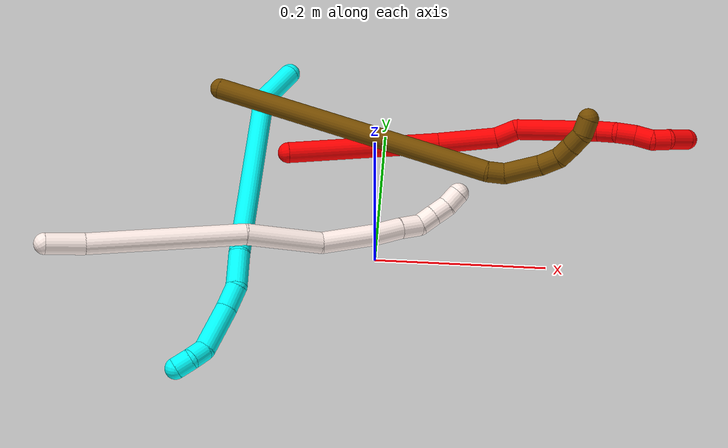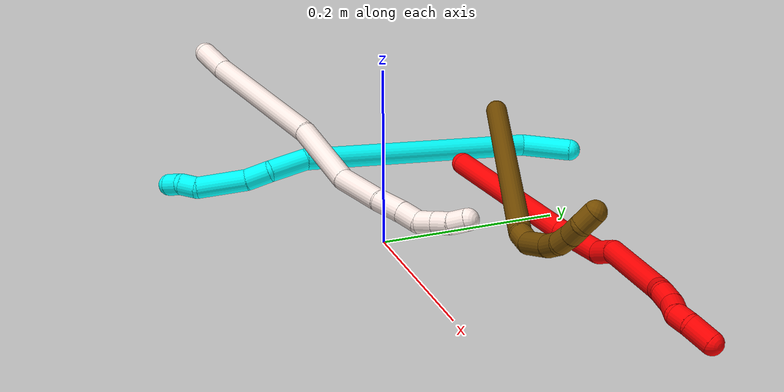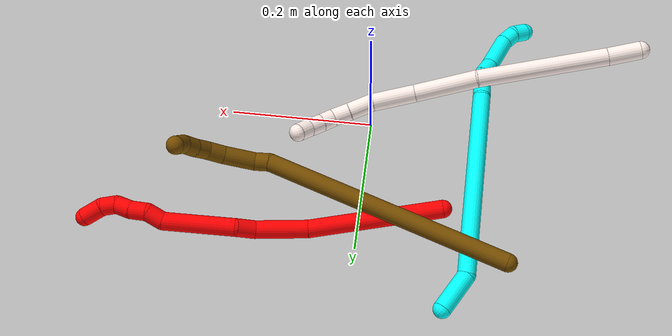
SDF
<sdf version="1.7">
 <world name="default">
  <model name="2">
   <static>0</static>
   <link name="2">
    <collision name="collision-cylinder-e_1_1_4">
     <pose>0.003264 0.012116 0.091276 -0.131971 0.035439 -0.002342</pose>
     <geometry><cylinder><radius>0.0125</radius><length>0.184268</length></cylinder></geometry>
     <surface>
      <friction><ode><mu>1.16</mu><mu2>1.16</mu2><slip1>0</slip1><slip2>0</slip2></ode></friction>
      <contact><ode><kp>1e+06</kp><kd>1</kd><max_vel>0</max_vel><min_depth>0.001</min_depth></ode></contact>
     </surface>
    </collision>
    <visual name="visual-cylinder-e_1_1_4">
     <pose>0.003264 0.012116 0.091276 -0.131971 0.035439 -0.002342</pose>
     <geometry><cylinder><radius>0.0125</radius><length>0.184268</length></cylinder></geometry>
     <material><ambient>1 0 0 1</ambient></material>
    </visual>
    <collision name="collision-cylinder-e_2_4_5">
     <pose>0.010001 0.02385 0.218422 0.010653 0.096491 0.000514</pose>
     <geometry><cylinder><radius>0.0125</radius><length>0.072081</length></cylinder></geometry>
     <surface>
      <friction><ode><mu>1.16</mu><mu2>1.16</mu2><slip1>0</slip1><slip2>0</slip2></ode></friction>
      <contact><ode><kp>1e+06</kp><kd>1</kd><max_vel>0</max_vel><min_depth>0.001</min_depth></ode></contact>
     </surface>
    </collision>
    <visual name="visual-cylinder-e_2_4_5">
     <pose>0.010001 0.02385 0.218422 0.010653 0.096491 0.000514</pose>
     <geometry><cylinder><radius>0.0125</radius><length>0.072081</length></cylinder></geometry>
     <material><ambient>1 0 0 1</ambient></material>
    </visual>
    <collision name="collision-cylinder-e_3_5_6">
     <pose>0.013192 0.01867 0.266925 0.36296 -0.020839 -0.003824</pose>
     <geometry><cylinder><radius>0.0125</radius><length>0.027033</length></cylinder></geometry>
     <surface>
      <friction><ode><mu>1.16</mu><mu2>1.16</mu2><slip1>0</slip1><slip2>0</slip2></ode></friction>
      <contact><ode><kp>1e+06</kp><kd>1</kd><max_vel>0</max_vel><min_depth>0.001</min_depth></ode></contact>
     </surface>
    </collision>
    <visual name="visual-cylinder-e_3_5_6">
     <pose>0.013192 0.01867 0.266925 0.36296 -0.020839 -0.003824</pose>
     <geometry><cylinder><radius>0.0125</radius><length>0.027033</length></cylinder></geometry>
     <material><ambient>1 0 0 1</ambient></material>
    </visual>
    <collision name="collision-cylinder-e_4_6_7">
     <pose>0.0241 0.01379 0.327628 0.001722 0.228706 0.000198</pose>
     <geometry><cylinder><radius>0.0125</radius><length>0.098709</length></cylinder></geometry>
     <surface>
      <friction><ode><mu>1.16</mu><mu2>1.16</mu2><slip1>0</slip1><slip2>0</slip2></ode></friction>
      <contact><ode><kp>1e+06</kp><kd>1</kd><max_vel>0</max_vel><min_depth>0.001</min_depth></ode></contact>
     </surface>
    </collision>
    <visual name="visual-cylinder-e_4_6_7">
     <pose>0.0241 0.01379 0.327628 0.001722 0.228706 0.000198</pose>
     <geometry><cylinder><radius>0.0125</radius><length>0.098709</length></cylinder></geometry>
     <material><ambient>1 0 0 1</ambient></material>
    </visual>
    <collision name="collision-cylinder-e_5_7_8">
     <pose>0.04103 0.009682 0.385343 0.395271 0.502269 0.102658</pose>
     <geometry><cylinder><radius>0.0125</radius><length>0.023849</length></cylinder></geometry>
     <surface>
      <friction><ode><mu>1.16</mu><mu2>1.16</mu2><slip1>0</slip1><slip2>0</slip2></ode></friction>
      <contact><ode><kp>1e+06</kp><kd>1</kd><max_vel>0</max_vel><min_depth>0.001</min_depth></ode></contact>
     </surface>
    </collision>
    <visual name="visual-cylinder-e_5_7_8">
     <pose>0.04103 0.009682 0.385343 0.395271 0.502269 0.102658</pose>
     <geometry><cylinder><radius>0.0125</radius><length>0.023849</length></cylinder></geometry>
     <material><ambient>1 0 0 1</ambient></material>
    </visual>
    <collision name="collision-cylinder-e_6_8_9">
     <pose>0.05057 0.00641 0.406074 -0.067798 0.3295 -0.011276</pose>
     <geometry><cylinder><radius>0.0125</radius><length>0.023485</length></cylinder></geometry>
     <surface>
      <friction><ode><mu>1.16</mu><mu2>1.16</mu2><slip1>0</slip1><slip2>0</slip2></ode></friction>
      <contact><ode><kp>1e+06</kp><kd>1</kd><max_vel>0</max_vel><min_depth>0.001</min_depth></ode></contact>
     </surface>
    </collision>
    <visual name="visual-cylinder-e_6_8_9">
     <pose>0.05057 0.00641 0.406074 -0.067798 0.3295 -0.011276</pose>
     <geometry><cylinder><radius>0.0125</radius><length>0.023485</length></cylinder></geometry>
     <material><ambient>1 0 0 1</ambient></material>
    </visual>
    <collision name="collision-cylinder-e_7_9_10">
     <pose>0.059979 0.006975 0.426398 0.020373 0.54558 0.0057</pose>
     <geometry><cylinder><radius>0.0125</radius><length>0.021622</length></cylinder></geometry>
     <surface>
      <friction><ode><mu>1.16</mu><mu2>1.16</mu2><slip1>0</slip1><slip2>0</slip2></ode></friction>
      <contact><ode><kp>1e+06</kp><kd>1</kd><max_vel>0</max_vel><min_depth>0.001</min_depth></ode></contact>
     </surface>
    </collision>
    <visual name="visual-cylinder-e_7_9_10">
     <pose>0.059979 0.006975 0.426398 0.020373 0.54558 0.0057</pose>
     <geometry><cylinder><radius>0.0125</radius><length>0.021622</length></cylinder></geometry>
     <material><ambient>1 0 0 1</ambient></material>
    </visual>
    <collision name="collision-cylinder-e_8_10_11">
     <pose>0.066096 0.008377 0.445689 -0.156956 0.049805 -0.003917</pose>
     <geometry><cylinder><radius>0.0125</radius><length>0.020378</length></cylinder></geometry>
     <surface>
      <friction><ode><mu>1.16</mu><mu2>1.16</mu2><slip1>0</slip1><slip2>0</slip2></ode></friction>
      <contact><ode><kp>1e+06</kp><kd>1</kd><max_vel>0</max_vel><min_depth>0.001</min_depth></ode></contact>
     </surface>
    </collision>
    <visual name="visual-cylinder-e_8_10_11">
     <pose>0.066096 0.008377 0.445689 -0.156956 0.049805 -0.003917</pose>
     <geometry><cylinder><radius>0.0125</radius><length>0.020378</length></cylinder></geometry>
     <material><ambient>1 0 0 1</ambient></material>
    </visual>
    <collision name="collision-cylinder-e_9_11_2">
     <pose>0.064581 0.016576 0.468246 -0.486149 -0.14205 0.035281</pose>
     <geometry><cylinder><radius>0.0125</radius><length>0.028576</length></cylinder></geometry>
     <surface>
      <friction><ode><mu>1.16</mu><mu2>1.16</mu2><slip1>0</slip1><slip2>0</slip2></ode></friction>
      <contact><ode><kp>1e+06</kp><kd>1</kd><max_vel>0</max_vel><min_depth>0.001</min_depth></ode></contact>
     </surface>
    </collision>
    <visual name="visual-cylinder-e_9_11_2">
     <pose>0.064581 0.016576 0.468246 -0.486149 -0.14205 0.035281</pose>
     <geometry><cylinder><radius>0.0125</radius><length>0.028576</length></cylinder></geometry>
     <material><ambient>1 0 0 1</ambient></material>
    </visual>
    <collision name="collision-sphere-2">
     <pose>0.062558 0.023185 0.480751 0 -0 0</pose>
     <geometry><sphere><radius>0.0125</radius></sphere></geometry>
     <surface>
      <friction><ode><mu>1.16</mu><mu2>1.16</mu2><slip1>0</slip1><slip2>0</slip2></ode></friction>
      <contact><ode><kp>1e+06</kp><kd>1</kd><max_vel>0</max_vel><min_depth>0.001</min_depth></ode></contact>
     </surface>
    </collision>
    <visual name="visual-sphere-2">
     <pose>0.062558 0.023185 0.480751 0 -0 0</pose>
     <geometry><sphere><radius>0.0125</radius></sphere></geometry>
     <material><ambient>1 0 0 1</ambient></material>
    </visual>
    <collision name="collision-sphere-11">
     <pose>0.066604 0.009968 0.455741 0 -0 0</pose>
     <geometry><sphere><radius>0.0125</radius></sphere></geometry>
     <surface>
      <friction><ode><mu>1.16</mu><mu2>1.16</mu2><slip1>0</slip1><slip2>0</slip2></ode></friction>
      <contact><ode><kp>1e+06</kp><kd>1</kd><max_vel>0</max_vel><min_depth>0.001</min_depth></ode></contact>
     </surface>
    </collision>
    <visual name="visual-sphere-11">
     <pose>0.066604 0.009968 0.455741 0 -0 0</pose>
     <geometry><sphere><radius>0.0125</radius></sphere></geometry>
     <material><ambient>1 0 0 1</ambient></material>
    </visual>
    <collision name="collision-sphere-10">
     <pose>0.065589 0.006786 0.435638 0 -0 0</pose>
     <geometry><sphere><radius>0.0125</radius></sphere></geometry>
     <surface>
      <friction><ode><mu>1.16</mu><mu2>1.16</mu2><slip1>0</slip1><slip2>0</slip2></ode></friction>
      <contact><ode><kp>1e+06</kp><kd>1</kd><max_vel>0</max_vel><min_depth>0.001</min_depth></ode></contact>
     </surface>
    </collision>
    <visual name="visual-sphere-10">
     <pose>0.065589 0.006786 0.435638 0 -0 0</pose>
     <geometry><sphere><radius>0.0125</radius></sphere></geometry>
     <material><ambient>1 0 0 1</ambient></material>
    </visual>
    <collision name="collision-sphere-9">
     <pose>0.054369 0.007163 0.417159 0 -0 0</pose>
     <geometry><sphere><radius>0.0125</radius></sphere></geometry>
     <surface>
      <friction><ode><mu>1.16</mu><mu2>1.16</mu2><slip1>0</slip1><slip2>0</slip2></ode></friction>
      <contact><ode><kp>1e+06</kp><kd>1</kd><max_vel>0</max_vel><min_depth>0.001</min_depth></ode></contact>
     </surface>
    </collision>
    <visual name="visual-sphere-9">
     <pose>0.054369 0.007163 0.417159 0 -0 0</pose>
     <geometry><sphere><radius>0.0125</radius></sphere></geometry>
     <material><ambient>1 0 0 1</ambient></material>
    </visual>
    <collision name="collision-sphere-4">
     <pose>0.006529 0.024232 0.182551 0 -0 0</pose>
     <geometry><sphere><radius>0.0125</radius></sphere></geometry>
     <surface>
      <friction><ode><mu>1.16</mu><mu2>1.16</mu2><slip1>0</slip1><slip2>0</slip2></ode></friction>
      <contact><ode><kp>1e+06</kp><kd>1</kd><max_vel>0</max_vel><min_depth>0.001</min_depth></ode></contact>
     </surface>
    </collision>
    <visual name="visual-sphere-4">
     <pose>0.006529 0.024232 0.182551 0 -0 0</pose>
     <geometry><sphere><radius>0.0125</radius></sphere></geometry>
     <material><ambient>1 0 0 1</ambient></material>
    </visual>
    <collision name="collision-sphere-1">
     <geometry><sphere><radius>0.0125</radius></sphere></geometry>
     <surface>
      <friction><ode><mu>1.16</mu><mu2>1.16</mu2><slip1>0</slip1><slip2>0</slip2></ode></friction>
      <contact><ode><kp>1e+06</kp><kd>1</kd><max_vel>0</max_vel><min_depth>0.001</min_depth></ode></contact>
     </surface>
    </collision>
    <visual name="visual-sphere-1">
     <geometry><sphere><radius>0.0125</radius></sphere></geometry>
     <material><ambient>1 0 0 1</ambient></material>
    </visual>
    <collision name="collision-sphere-8">
     <pose>0.04677 0.005658 0.394989 0 -0 0</pose>
     <geometry><sphere><radius>0.0125</radius></sphere></geometry>
     <surface>
      <friction><ode><mu>1.16</mu><mu2>1.16</mu2><slip1>0</slip1><slip2>0</slip2></ode></friction>
      <contact><ode><kp>1e+06</kp><kd>1</kd><max_vel>0</max_vel><min_depth>0.001</min_depth></ode></contact>
     </surface>
    </collision>
    <visual name="visual-sphere-8">
     <pose>0.04677 0.005658 0.394989 0 -0 0</pose>
     <geometry><sphere><radius>0.0125</radius></sphere></geometry>
     <material><ambient>1 0 0 1</ambient></material>
    </visual>
    <collision name="collision-sphere-5">
     <pose>0.013473 0.023468 0.254292 0 -0 0</pose>
     <geometry><sphere><radius>0.0125</radius></sphere></geometry>
     <surface>
      <friction><ode><mu>1.16</mu><mu2>1.16</mu2><slip1>0</slip1><slip2>0</slip2></ode></friction>
      <contact><ode><kp>1e+06</kp><kd>1</kd><max_vel>0</max_vel><min_depth>0.001</min_depth></ode></contact>
     </surface>
    </collision>
    <visual name="visual-sphere-5">
     <pose>0.013473 0.023468 0.254292 0 -0 0</pose>
     <geometry><sphere><radius>0.0125</radius></sphere></geometry>
     <material><ambient>1 0 0 1</ambient></material>
    </visual>
    <collision name="collision-sphere-6">
     <pose>0.01291 0.013872 0.279558 0 -0 0</pose>
     <geometry><sphere><radius>0.0125</radius></sphere></geometry>
     <surface>
      <friction><ode><mu>1.16</mu><mu2>1.16</mu2><slip1>0</slip1><slip2>0</slip2></ode></friction>
      <contact><ode><kp>1e+06</kp><kd>1</kd><max_vel>0</max_vel><min_depth>0.001</min_depth></ode></contact>
     </surface>
    </collision>
    <visual name="visual-sphere-6">
     <pose>0.01291 0.013872 0.279558 0 -0 0</pose>
     <geometry><sphere><radius>0.0125</radius></sphere></geometry>
     <material><ambient>1 0 0 1</ambient></material>
    </visual>
    <collision name="collision-sphere-7">
     <pose>0.035289 0.013707 0.375697 0 -0 0</pose>
     <geometry><sphere><radius>0.0125</radius></sphere></geometry>
     <surface>
      <friction><ode><mu>1.16</mu><mu2>1.16</mu2><slip1>0</slip1><slip2>0</slip2></ode></friction>
      <contact><ode><kp>1e+06</kp><kd>1</kd><max_vel>0</max_vel><min_depth>0.001</min_depth></ode></contact>
     </surface>
    </collision>
    <visual name="visual-sphere-7">
     <pose>0.035289 0.013707 0.375697 0 -0 0</pose>
     <geometry><sphere><radius>0.0125</radius></sphere></geometry>
     <material><ambient>1 0 0 1</ambient></material>
    </visual>
    <inertial>
     <pose>0.021426 0.013988 0.245055 0 -0 0</pose>
     <mass>0.5</mass>
     <inertia>
      <ixx>0.00066</ixx>
      <ixy>0</ixy>
      <ixz>0</ixz>
      <iyy>0.000655</iyy>
      <iyz>0</iyz>
      <izz>-7.5e-05</izz>
     </inertia>
    </inertial>
   </link>
   <pose>-0.113829 0.140556 0.02774 -1.52259 0.159757 -1.31581</pose>
  </model>
  <model name="3">
   <static>0</static>
   <link name="3">
    <collision name="collision-cylinder-e_1_1_4">
     <pose>-0.00414 -0.028111 0.002272 1.49016 -0.145767 -0.134498</pose>
     <geometry><cylinder><radius>0.0125</radius><length>0.05701</length></cylinder></geometry>
     <surface>
      <friction><ode><mu>1.16</mu><mu2>1.16</mu2><slip1>0</slip1><slip2>0</slip2></ode></friction>
      <contact><ode><kp>1e+06</kp><kd>1</kd><max_vel>0</max_vel><min_depth>0.001</min_depth></ode></contact>
     </surface>
    </collision>
    <visual name="visual-cylinder-e_1_1_4">
     <pose>-0.00414 -0.028111 0.002272 1.49016 -0.145767 -0.134498</pose>
     <geometry><cylinder><radius>0.0125</radius><length>0.05701</length></cylinder></geometry>
     <material><ambient>0.003922 1 0.996078 1</ambient></material>
    </visual>
    <collision name="collision-cylinder-e_2_4_5">
     <pose>-0.009062 -0.171086 0.077737 1.00345 -0.005733 -0.003145</pose>
     <geometry><cylinder><radius>0.0125</radius><length>0.272408</length></cylinder></geometry>
     <surface>
      <friction><ode><mu>1.16</mu><mu2>1.16</mu2><slip1>0</slip1><slip2>0</slip2></ode></friction>
      <contact><ode><kp>1e+06</kp><kd>1</kd><max_vel>0</max_vel><min_depth>0.001</min_depth></ode></contact>
     </surface>
    </collision>
    <visual name="visual-cylinder-e_2_4_5">
     <pose>-0.009062 -0.171086 0.077737 1.00345 -0.005733 -0.003145</pose>
     <geometry><cylinder><radius>0.0125</radius><length>0.272408</length></cylinder></geometry>
     <material><ambient>0.003922 1 0.996078 1</ambient></material>
    </visual>
    <collision name="collision-cylinder-e_3_5_6">
     <pose>-0.004405 -0.304496 0.161168 1.06647 0.251274 0.14883</pose>
     <geometry><cylinder><radius>0.0125</radius><length>0.043743</length></cylinder></geometry>
     <surface>
      <friction><ode><mu>1.16</mu><mu2>1.16</mu2><slip1>0</slip1><slip2>0</slip2></ode></friction>
      <contact><ode><kp>1e+06</kp><kd>1</kd><max_vel>0</max_vel><min_depth>0.001</min_depth></ode></contact>
     </surface>
    </collision>
    <visual name="visual-cylinder-e_3_5_6">
     <pose>-0.004405 -0.304496 0.161168 1.06647 0.251274 0.14883</pose>
     <geometry><cylinder><radius>0.0125</radius><length>0.043743</length></cylinder></geometry>
     <material><ambient>0.003922 1 0.996078 1</ambient></material>
    </visual>
    <collision name="collision-cylinder-e_4_6_7">
     <pose>0.005454 -0.336722 0.172442 1.49511 0.311737 0.289322</pose>
     <geometry><cylinder><radius>0.0125</radius><length>0.028825</length></cylinder></geometry>
     <surface>
      <friction><ode><mu>1.16</mu><mu2>1.16</mu2><slip1>0</slip1><slip2>0</slip2></ode></friction>
      <contact><ode><kp>1e+06</kp><kd>1</kd><max_vel>0</max_vel><min_depth>0.001</min_depth></ode></contact>
     </surface>
    </collision>
    <visual name="visual-cylinder-e_4_6_7">
     <pose>0.005454 -0.336722 0.172442 1.49511 0.311737 0.289322</pose>
     <geometry><cylinder><radius>0.0125</radius><length>0.028825</length></cylinder></geometry>
     <material><ambient>0.003922 1 0.996078 1</ambient></material>
    </visual>
    <collision name="collision-cylinder-e_5_7_8">
     <pose>0.013121 -0.378674 0.178064 1.41004 0.112875 0.096074</pose>
     <geometry><cylinder><radius>0.0125</radius><length>0.057653</length></cylinder></geometry>
     <surface>
      <friction><ode><mu>1.16</mu><mu2>1.16</mu2><slip1>0</slip1><slip2>0</slip2></ode></friction>
      <contact><ode><kp>1e+06</kp><kd>1</kd><max_vel>0</max_vel><min_depth>0.001</min_depth></ode></contact>
     </surface>
    </collision>
    <visual name="visual-cylinder-e_5_7_8">
     <pose>0.013121 -0.378674 0.178064 1.41004 0.112875 0.096074</pose>
     <geometry><cylinder><radius>0.0125</radius><length>0.057653</length></cylinder></geometry>
     <material><ambient>0.003922 1 0.996078 1</ambient></material>
    </visual>
    <collision name="collision-cylinder-e_6_8_9">
     <pose>0.014119 -0.416733 0.181472 1.69042 -0.224376 -0.252675</pose>
     <geometry><cylinder><radius>0.0125</radius><length>0.020219</length></cylinder></geometry>
     <surface>
      <friction><ode><mu>1.16</mu><mu2>1.16</mu2><slip1>0</slip1><slip2>0</slip2></ode></friction>
      <contact><ode><kp>1e+06</kp><kd>1</kd><max_vel>0</max_vel><min_depth>0.001</min_depth></ode></contact>
     </surface>
    </collision>
    <visual name="visual-cylinder-e_6_8_9">
     <pose>0.014119 -0.416733 0.181472 1.69042 -0.224376 -0.252675</pose>
     <geometry><cylinder><radius>0.0125</radius><length>0.020219</length></cylinder></geometry>
     <material><ambient>0.003922 1 0.996078 1</ambient></material>
    </visual>
    <collision name="collision-cylinder-e_7_9_2">
     <pose>0.012321 -0.435373 0.175519 2.06563 0.044891 0.075211</pose>
     <geometry><cylinder><radius>0.0125</radius><length>0.020142</length></cylinder></geometry>
     <surface>
      <friction><ode><mu>1.16</mu><mu2>1.16</mu2><slip1>0</slip1><slip2>0</slip2></ode></friction>
      <contact><ode><kp>1e+06</kp><kd>1</kd><max_vel>0</max_vel><min_depth>0.001</min_depth></ode></contact>
     </surface>
    </collision>
    <visual name="visual-cylinder-e_7_9_2">
     <pose>0.012321 -0.435373 0.175519 2.06563 0.044891 0.075211</pose>
     <geometry><cylinder><radius>0.0125</radius><length>0.020142</length></cylinder></geometry>
     <material><ambient>0.003922 1 0.996078 1</ambient></material>
    </visual>
    <collision name="collision-sphere-2">
     <pose>0.012773 -0.444227 0.170741 0 -0 0</pose>
     <geometry><sphere><radius>0.0125</radius></sphere></geometry>
     <surface>
      <friction><ode><mu>1.16</mu><mu2>1.16</mu2><slip1>0</slip1><slip2>0</slip2></ode></friction>
      <contact><ode><kp>1e+06</kp><kd>1</kd><max_vel>0</max_vel><min_depth>0.001</min_depth></ode></contact>
     </surface>
    </collision>
    <visual name="visual-sphere-2">
     <pose>0.012773 -0.444227 0.170741 0 -0 0</pose>
     <geometry><sphere><radius>0.0125</radius></sphere></geometry>
     <material><ambient>0.003922 1 0.996078 1</ambient></material>
    </visual>
    <collision name="collision-sphere-9">
     <pose>0.011869 -0.426519 0.180296 0 -0 0</pose>
     <geometry><sphere><radius>0.0125</radius></sphere></geometry>
     <surface>
      <friction><ode><mu>1.16</mu><mu2>1.16</mu2><slip1>0</slip1><slip2>0</slip2></ode></friction>
      <contact><ode><kp>1e+06</kp><kd>1</kd><max_vel>0</max_vel><min_depth>0.001</min_depth></ode></contact>
     </surface>
    </collision>
    <visual name="visual-sphere-9">
     <pose>0.011869 -0.426519 0.180296 0 -0 0</pose>
     <geometry><sphere><radius>0.0125</radius></sphere></geometry>
     <material><ambient>0.003922 1 0.996078 1</ambient></material>
    </visual>
    <collision name="collision-sphere-4">
     <pose>-0.008281 -0.056223 0.004543 0 -0 0</pose>
     <geometry><sphere><radius>0.0125</radius></sphere></geometry>
     <surface>
      <friction><ode><mu>1.16</mu><mu2>1.16</mu2><slip1>0</slip1><slip2>0</slip2></ode></friction>
      <contact><ode><kp>1e+06</kp><kd>1</kd><max_vel>0</max_vel><min_depth>0.001</min_depth></ode></contact>
     </surface>
    </collision>
    <visual name="visual-sphere-4">
     <pose>-0.008281 -0.056223 0.004543 0 -0 0</pose>
     <geometry><sphere><radius>0.0125</radius></sphere></geometry>
     <material><ambient>0.003922 1 0.996078 1</ambient></material>
    </visual>
    <collision name="collision-sphere-1">
     <geometry><sphere><radius>0.0125</radius></sphere></geometry>
     <surface>
      <friction><ode><mu>1.16</mu><mu2>1.16</mu2><slip1>0</slip1><slip2>0</slip2></ode></friction>
      <contact><ode><kp>1e+06</kp><kd>1</kd><max_vel>0</max_vel><min_depth>0.001</min_depth></ode></contact>
     </surface>
    </collision>
    <visual name="visual-sphere-1">
     <geometry><sphere><radius>0.0125</radius></sphere></geometry>
     <material><ambient>0.003922 1 0.996078 1</ambient></material>
    </visual>
    <collision name="collision-sphere-8">
     <pose>0.016368 -0.406948 0.182649 0 -0 0</pose>
     <geometry><sphere><radius>0.0125</radius></sphere></geometry>
     <surface>
      <friction><ode><mu>1.16</mu><mu2>1.16</mu2><slip1>0</slip1><slip2>0</slip2></ode></friction>
      <contact><ode><kp>1e+06</kp><kd>1</kd><max_vel>0</max_vel><min_depth>0.001</min_depth></ode></contact>
     </surface>
    </collision>
    <visual name="visual-sphere-8">
     <pose>0.016368 -0.406948 0.182649 0 -0 0</pose>
     <geometry><sphere><radius>0.0125</radius></sphere></geometry>
     <material><ambient>0.003922 1 0.996078 1</ambient></material>
    </visual>
    <collision name="collision-sphere-5">
     <pose>-0.009843 -0.285949 0.150931 0 -0 0</pose>
     <geometry><sphere><radius>0.0125</radius></sphere></geometry>
     <surface>
      <friction><ode><mu>1.16</mu><mu2>1.16</mu2><slip1>0</slip1><slip2>0</slip2></ode></friction>
      <contact><ode><kp>1e+06</kp><kd>1</kd><max_vel>0</max_vel><min_depth>0.001</min_depth></ode></contact>
     </surface>
    </collision>
    <visual name="visual-sphere-5">
     <pose>-0.009843 -0.285949 0.150931 0 -0 0</pose>
     <geometry><sphere><radius>0.0125</radius></sphere></geometry>
     <material><ambient>0.003922 1 0.996078 1</ambient></material>
    </visual>
    <collision name="collision-sphere-6">
     <pose>0.001034 -0.323043 0.171405 0 -0 0</pose>
     <geometry><sphere><radius>0.0125</radius></sphere></geometry>
     <surface>
      <friction><ode><mu>1.16</mu><mu2>1.16</mu2><slip1>0</slip1><slip2>0</slip2></ode></friction>
      <contact><ode><kp>1e+06</kp><kd>1</kd><max_vel>0</max_vel><min_depth>0.001</min_depth></ode></contact>
     </surface>
    </collision>
    <visual name="visual-sphere-6">
     <pose>0.001034 -0.323043 0.171405 0 -0 0</pose>
     <geometry><sphere><radius>0.0125</radius></sphere></geometry>
     <material><ambient>0.003922 1 0.996078 1</ambient></material>
    </visual>
    <collision name="collision-sphere-7">
     <pose>0.009874 -0.3504 0.173479 0 -0 0</pose>
     <geometry><sphere><radius>0.0125</radius></sphere></geometry>
     <surface>
      <friction><ode><mu>1.16</mu><mu2>1.16</mu2><slip1>0</slip1><slip2>0</slip2></ode></friction>
      <contact><ode><kp>1e+06</kp><kd>1</kd><max_vel>0</max_vel><min_depth>0.001</min_depth></ode></contact>
     </surface>
    </collision>
    <visual name="visual-sphere-7">
     <pose>0.009874 -0.3504 0.173479 0 -0 0</pose>
     <geometry><sphere><radius>0.0125</radius></sphere></geometry>
     <material><ambient>0.003922 1 0.996078 1</ambient></material>
    </visual>
    <inertial>
     <pose>-0.0029 -0.22052 0.101593 0 -0 0</pose>
     <mass>0.5</mass>
     <inertia>
      <ixx>0.001741</ixx>
      <ixy>0</ixy>
      <ixz>0</ixz>
      <iyy>0.000881</iyy>
      <iyz>0</iyz>
      <izz>0.001499</izz>
     </inertia>
    </inertial>
   </link>
   <pose>-0.124534 0.28303 0.019312 0.333103 1.23944 -0.226459</pose>
  </model>
  <model name="11">
   <static>0</static>
   <link name="11">
    <collision name="collision-cylinder-e_1_1_4">
     <pose>-0.003858 0.011179 -0.019559 -2.62235 -0.169609 0.619486</pose>
     <geometry><cylinder><radius>0.0125</radius><length>0.045713</length></cylinder></geometry>
     <surface>
      <friction><ode><mu>1.16</mu><mu2>1.16</mu2><slip1>0</slip1><slip2>0</slip2></ode></friction>
      <contact><ode><kp>1e+06</kp><kd>1</kd><max_vel>0</max_vel><min_depth>0.001</min_depth></ode></contact>
     </surface>
    </collision>
    <visual name="visual-cylinder-e_1_1_4">
     <pose>-0.003858 0.011179 -0.019559 -2.62235 -0.169609 0.619486</pose>
     <geometry><cylinder><radius>0.0125</radius><length>0.045713</length></cylinder></geometry>
     <material><ambient>1 0.933333 0.909804 1</ambient></material>
    </visual>
    <collision name="collision-cylinder-e_2_4_5">
     <pose>-0.024615 0.060723 -0.12032 -2.70022 -0.185986 0.787957</pose>
     <geometry><cylinder><radius>0.0125</radius><length>0.182769</length></cylinder></geometry>
     <surface>
      <friction><ode><mu>1.16</mu><mu2>1.16</mu2><slip1>0</slip1><slip2>0</slip2></ode></friction>
      <contact><ode><kp>1e+06</kp><kd>1</kd><max_vel>0</max_vel><min_depth>0.001</min_depth></ode></contact>
     </surface>
    </collision>
    <visual name="visual-cylinder-e_2_4_5">
     <pose>-0.024615 0.060723 -0.12032 -2.70022 -0.185986 0.787957</pose>
     <geometry><cylinder><radius>0.0125</radius><length>0.182769</length></cylinder></geometry>
     <material><ambient>1 0.933333 0.909804 1</ambient></material>
    </visual>
    <collision name="collision-cylinder-e_3_5_6">
     <pose>-0.048291 0.125693 -0.237267 -2.50175 -0.150952 0.448811</pose>
     <geometry><cylinder><radius>0.0125</radius><length>0.090144</length></cylinder></geometry>
     <surface>
      <friction><ode><mu>1.16</mu><mu2>1.16</mu2><slip1>0</slip1><slip2>0</slip2></ode></friction>
      <contact><ode><kp>1e+06</kp><kd>1</kd><max_vel>0</max_vel><min_depth>0.001</min_depth></ode></contact>
     </surface>
    </collision>
    <visual name="visual-cylinder-e_3_5_6">
     <pose>-0.048291 0.125693 -0.237267 -2.50175 -0.150952 0.448811</pose>
     <geometry><cylinder><radius>0.0125</radius><length>0.090144</length></cylinder></geometry>
     <material><ambient>1 0.933333 0.909804 1</ambient></material>
    </visual>
    <collision name="collision-cylinder-e_4_6_7">
     <pose>-0.059091 0.163457 -0.30188 -2.77272 -0.129243 0.667781</pose>
     <geometry><cylinder><radius>0.0125</radius><length>0.062419</length></cylinder></geometry>
     <surface>
      <friction><ode><mu>1.16</mu><mu2>1.16</mu2><slip1>0</slip1><slip2>0</slip2></ode></friction>
      <contact><ode><kp>1e+06</kp><kd>1</kd><max_vel>0</max_vel><min_depth>0.001</min_depth></ode></contact>
     </surface>
    </collision>
    <visual name="visual-cylinder-e_4_6_7">
     <pose>-0.059091 0.163457 -0.30188 -2.77272 -0.129243 0.667781</pose>
     <geometry><cylinder><radius>0.0125</radius><length>0.062419</length></cylinder></geometry>
     <material><ambient>1 0.933333 0.909804 1</ambient></material>
    </visual>
    <collision name="collision-cylinder-e_5_7_8">
     <pose>-0.062306 0.180466 -0.346674 -2.78959 0.047542 -0.265804</pose>
     <geometry><cylinder><radius>0.0125</radius><length>0.033972</length></cylinder></geometry>
     <surface>
      <friction><ode><mu>1.16</mu><mu2>1.16</mu2><slip1>0</slip1><slip2>0</slip2></ode></friction>
      <contact><ode><kp>1e+06</kp><kd>1</kd><max_vel>0</max_vel><min_depth>0.001</min_depth></ode></contact>
     </surface>
    </collision>
    <visual name="visual-cylinder-e_5_7_8">
     <pose>-0.062306 0.180466 -0.346674 -2.78959 0.047542 -0.265804</pose>
     <geometry><cylinder><radius>0.0125</radius><length>0.033972</length></cylinder></geometry>
     <material><ambient>1 0.933333 0.909804 1</ambient></material>
    </visual>
    <collision name="collision-cylinder-e_6_8_9">
     <pose>-0.061398 0.191329 -0.373893 -2.72383 0.008214 -0.038746</pose>
     <geometry><cylinder><radius>0.0125</radius><length>0.024711</length></cylinder></geometry>
     <surface>
      <friction><ode><mu>1.16</mu><mu2>1.16</mu2><slip1>0</slip1><slip2>0</slip2></ode></friction>
      <contact><ode><kp>1e+06</kp><kd>1</kd><max_vel>0</max_vel><min_depth>0.001</min_depth></ode></contact>
     </surface>
    </collision>
    <visual name="visual-cylinder-e_6_8_9">
     <pose>-0.061398 0.191329 -0.373893 -2.72383 0.008214 -0.038746</pose>
     <geometry><cylinder><radius>0.0125</radius><length>0.024711</length></cylinder></geometry>
     <material><ambient>1 0.933333 0.909804 1</ambient></material>
    </visual>
    <collision name="collision-cylinder-e_7_9_10">
     <pose>-0.060009 0.19624 -0.395185 3.13149 0.128021 2.98429</pose>
     <geometry><cylinder><radius>0.0125</radius><length>0.020165</length></cylinder></geometry>
     <surface>
      <friction><ode><mu>1.16</mu><mu2>1.16</mu2><slip1>0</slip1><slip2>0</slip2></ode></friction>
      <contact><ode><kp>1e+06</kp><kd>1</kd><max_vel>0</max_vel><min_depth>0.001</min_depth></ode></contact>
     </surface>
    </collision>
    <visual name="visual-cylinder-e_7_9_10">
     <pose>-0.060009 0.19624 -0.395185 3.13149 0.128021 2.98429</pose>
     <geometry><cylinder><radius>0.0125</radius><length>0.020165</length></cylinder></geometry>
     <material><ambient>1 0.933333 0.909804 1</ambient></material>
    </visual>
    <collision name="collision-cylinder-e_8_10_11">
     <pose>-0.057932 0.195983 -0.415169 3.12598 0.078928 2.75122</pose>
     <geometry><cylinder><radius>0.0125</radius><length>0.020033</length></cylinder></geometry>
     <surface>
      <friction><ode><mu>1.16</mu><mu2>1.16</mu2><slip1>0</slip1><slip2>0</slip2></ode></friction>
      <contact><ode><kp>1e+06</kp><kd>1</kd><max_vel>0</max_vel><min_depth>0.001</min_depth></ode></contact>
     </surface>
    </collision>
    <visual name="visual-cylinder-e_8_10_11">
     <pose>-0.057932 0.195983 -0.415169 3.12598 0.078928 2.75122</pose>
     <geometry><cylinder><radius>0.0125</radius><length>0.020033</length></cylinder></geometry>
     <material><ambient>1 0.933333 0.909804 1</ambient></material>
    </visual>
    <collision name="collision-cylinder-e_9_11_2">
     <pose>-0.055729 0.193395 -0.434787 2.89433 0.141295 1.03534</pose>
     <geometry><cylinder><radius>0.0125</radius><length>0.020073</length></cylinder></geometry>
     <surface>
      <friction><ode><mu>1.16</mu><mu2>1.16</mu2><slip1>0</slip1><slip2>0</slip2></ode></friction>
      <contact><ode><kp>1e+06</kp><kd>1</kd><max_vel>0</max_vel><min_depth>0.001</min_depth></ode></contact>
     </surface>
    </collision>
    <visual name="visual-cylinder-e_9_11_2">
     <pose>-0.055729 0.193395 -0.434787 2.89433 0.141295 1.03534</pose>
     <geometry><cylinder><radius>0.0125</radius><length>0.020073</length></cylinder></geometry>
     <material><ambient>1 0.933333 0.909804 1</ambient></material>
    </visual>
    <collision name="collision-sphere-2">
     <pose>-0.054315 0.190963 -0.444422 0 -0 0</pose>
     <geometry><sphere><radius>0.0125</radius></sphere></geometry>
     <surface>
      <friction><ode><mu>1.16</mu><mu2>1.16</mu2><slip1>0</slip1><slip2>0</slip2></ode></friction>
      <contact><ode><kp>1e+06</kp><kd>1</kd><max_vel>0</max_vel><min_depth>0.001</min_depth></ode></contact>
     </surface>
    </collision>
    <visual name="visual-sphere-2">
     <pose>-0.054315 0.190963 -0.444422 0 -0 0</pose>
     <geometry><sphere><radius>0.0125</radius></sphere></geometry>
     <material><ambient>1 0.933333 0.909804 1</ambient></material>
    </visual>
    <collision name="collision-sphere-11">
     <pose>-0.057142 0.195827 -0.425153 0 -0 0</pose>
     <geometry><sphere><radius>0.0125</radius></sphere></geometry>
     <surface>
      <friction><ode><mu>1.16</mu><mu2>1.16</mu2><slip1>0</slip1><slip2>0</slip2></ode></friction>
      <contact><ode><kp>1e+06</kp><kd>1</kd><max_vel>0</max_vel><min_depth>0.001</min_depth></ode></contact>
     </surface>
    </collision>
    <visual name="visual-sphere-11">
     <pose>-0.057142 0.195827 -0.425153 0 -0 0</pose>
     <geometry><sphere><radius>0.0125</radius></sphere></geometry>
     <material><ambient>1 0.933333 0.909804 1</ambient></material>
    </visual>
    <collision name="collision-sphere-10">
     <pose>-0.058722 0.196139 -0.405184 0 -0 0</pose>
     <geometry><sphere><radius>0.0125</radius></sphere></geometry>
     <surface>
      <friction><ode><mu>1.16</mu><mu2>1.16</mu2><slip1>0</slip1><slip2>0</slip2></ode></friction>
      <contact><ode><kp>1e+06</kp><kd>1</kd><max_vel>0</max_vel><min_depth>0.001</min_depth></ode></contact>
     </surface>
    </collision>
    <visual name="visual-sphere-10">
     <pose>-0.058722 0.196139 -0.405184 0 -0 0</pose>
     <geometry><sphere><radius>0.0125</radius></sphere></geometry>
     <material><ambient>1 0.933333 0.909804 1</ambient></material>
    </visual>
    <collision name="collision-sphere-9">
     <pose>-0.061296 0.196341 -0.385186 0 -0 0</pose>
     <geometry><sphere><radius>0.0125</radius></sphere></geometry>
     <surface>
      <friction><ode><mu>1.16</mu><mu2>1.16</mu2><slip1>0</slip1><slip2>0</slip2></ode></friction>
      <contact><ode><kp>1e+06</kp><kd>1</kd><max_vel>0</max_vel><min_depth>0.001</min_depth></ode></contact>
     </surface>
    </collision>
    <visual name="visual-sphere-9">
     <pose>-0.061296 0.196341 -0.385186 0 -0 0</pose>
     <geometry><sphere><radius>0.0125</radius></sphere></geometry>
     <material><ambient>1 0.933333 0.909804 1</ambient></material>
    </visual>
    <collision name="collision-sphere-4">
     <pose>-0.007716 0.022358 -0.039119 0 -0 0</pose>
     <geometry><sphere><radius>0.0125</radius></sphere></geometry>
     <surface>
      <friction><ode><mu>1.16</mu><mu2>1.16</mu2><slip1>0</slip1><slip2>0</slip2></ode></friction>
      <contact><ode><kp>1e+06</kp><kd>1</kd><max_vel>0</max_vel><min_depth>0.001</min_depth></ode></contact>
     </surface>
    </collision>
    <visual name="visual-sphere-4">
     <pose>-0.007716 0.022358 -0.039119 0 -0 0</pose>
     <geometry><sphere><radius>0.0125</radius></sphere></geometry>
     <material><ambient>1 0.933333 0.909804 1</ambient></material>
    </visual>
    <collision name="collision-sphere-1">
     <geometry><sphere><radius>0.0125</radius></sphere></geometry>
     <surface>
      <friction><ode><mu>1.16</mu><mu2>1.16</mu2><slip1>0</slip1><slip2>0</slip2></ode></friction>
      <contact><ode><kp>1e+06</kp><kd>1</kd><max_vel>0</max_vel><min_depth>0.001</min_depth></ode></contact>
     </surface>
    </collision>
    <visual name="visual-sphere-1">
     <geometry><sphere><radius>0.0125</radius></sphere></geometry>
     <material><ambient>1 0.933333 0.909804 1</ambient></material>
    </visual>
    <collision name="collision-sphere-8">
     <pose>-0.061499 0.186316 -0.362601 0 -0 0</pose>
     <geometry><sphere><radius>0.0125</radius></sphere></geometry>
     <surface>
      <friction><ode><mu>1.16</mu><mu2>1.16</mu2><slip1>0</slip1><slip2>0</slip2></ode></friction>
      <contact><ode><kp>1e+06</kp><kd>1</kd><max_vel>0</max_vel><min_depth>0.001</min_depth></ode></contact>
     </surface>
    </collision>
    <visual name="visual-sphere-8">
     <pose>-0.061499 0.186316 -0.362601 0 -0 0</pose>
     <geometry><sphere><radius>0.0125</radius></sphere></geometry>
     <material><ambient>1 0.933333 0.909804 1</ambient></material>
    </visual>
    <collision name="collision-sphere-5">
     <pose>-0.041513 0.099088 -0.201522 0 -0 0</pose>
     <geometry><sphere><radius>0.0125</radius></sphere></geometry>
     <surface>
      <friction><ode><mu>1.16</mu><mu2>1.16</mu2><slip1>0</slip1><slip2>0</slip2></ode></friction>
      <contact><ode><kp>1e+06</kp><kd>1</kd><max_vel>0</max_vel><min_depth>0.001</min_depth></ode></contact>
     </surface>
    </collision>
    <visual name="visual-sphere-5">
     <pose>-0.041513 0.099088 -0.201522 0 -0 0</pose>
     <geometry><sphere><radius>0.0125</radius></sphere></geometry>
     <material><ambient>1 0.933333 0.909804 1</ambient></material>
    </visual>
    <collision name="collision-sphere-6">
     <pose>-0.055069 0.152298 -0.273012 0 -0 0</pose>
     <geometry><sphere><radius>0.0125</radius></sphere></geometry>
     <surface>
      <friction><ode><mu>1.16</mu><mu2>1.16</mu2><slip1>0</slip1><slip2>0</slip2></ode></friction>
      <contact><ode><kp>1e+06</kp><kd>1</kd><max_vel>0</max_vel><min_depth>0.001</min_depth></ode></contact>
     </surface>
    </collision>
    <visual name="visual-sphere-6">
     <pose>-0.055069 0.152298 -0.273012 0 -0 0</pose>
     <geometry><sphere><radius>0.0125</radius></sphere></geometry>
     <material><ambient>1 0.933333 0.909804 1</ambient></material>
    </visual>
    <collision name="collision-sphere-7">
     <pose>-0.063114 0.174616 -0.330747 0 -0 0</pose>
     <geometry><sphere><radius>0.0125</radius></sphere></geometry>
     <surface>
      <friction><ode><mu>1.16</mu><mu2>1.16</mu2><slip1>0</slip1><slip2>0</slip2></ode></friction>
      <contact><ode><kp>1e+06</kp><kd>1</kd><max_vel>0</max_vel><min_depth>0.001</min_depth></ode></contact>
     </surface>
    </collision>
    <visual name="visual-sphere-7">
     <pose>-0.063114 0.174616 -0.330747 0 -0 0</pose>
     <geometry><sphere><radius>0.0125</radius></sphere></geometry>
     <material><ambient>1 0.933333 0.909804 1</ambient></material>
    </visual>
    <inertial>
     <pose>-0.03968 0.111534 -0.218293 0 -0 0</pose>
     <mass>0.5</mass>
     <inertia>
      <ixx>0.000848</ixx>
      <ixy>0</ixy>
      <ixz>0</ixz>
      <iyy>5.2e-05</iyy>
      <iyz>0</iyz>
      <izz>-0.000195</izz>
     </inertia>
    </inertial>
   </link>
   <pose>-0.364864 -0.09409 0.111033 -1.80703 0.405923 2.06478</pose>
  </model>
  <model name="12">
   <static>0</static>
   <link name="12">
    <collision name="collision-cylinder-e_1_1_4">
     <pose>0.164723 -0.004492 -0.059137 3.06578 1.2252 3.03378</pose>
     <geometry><cylinder><radius>0.0125</radius><length>0.350149</length></cylinder></geometry>
     <surface>
      <friction><ode><mu>1.16</mu><mu2>1.16</mu2><slip1>0</slip1><slip2>0</slip2></ode></friction>
      <contact><ode><kp>1e+06</kp><kd>1</kd><max_vel>0</max_vel><min_depth>0.001</min_depth></ode></contact>
     </surface>
    </collision>
    <visual name="visual-cylinder-e_1_1_4">
     <pose>0.164723 -0.004492 -0.059137 3.06578 1.2252 3.03378</pose>
     <geometry><cylinder><radius>0.0125</radius><length>0.350149</length></cylinder></geometry>
     <material><ambient>0.466667 0.301961 0 1</ambient></material>
    </visual>
    <collision name="collision-cylinder-e_2_4_5">
     <pose>0.339045 -0.005844 -0.121023 -2.28973 1.16073 -1.93098</pose>
     <geometry><cylinder><radius>0.0125</radius><length>0.020934</length></cylinder></geometry>
     <surface>
      <friction><ode><mu>1.16</mu><mu2>1.16</mu2><slip1>0</slip1><slip2>0</slip2></ode></friction>
      <contact><ode><kp>1e+06</kp><kd>1</kd><max_vel>0</max_vel><min_depth>0.001</min_depth></ode></contact>
     </surface>
    </collision>
    <visual name="visual-cylinder-e_2_4_5">
     <pose>0.339045 -0.005844 -0.121023 -2.28973 1.16073 -1.93098</pose>
     <geometry><cylinder><radius>0.0125</radius><length>0.020934</length></cylinder></geometry>
     <material><ambient>0.466667 0.301961 0 1</ambient></material>
    </visual>
    <collision name="collision-cylinder-e_3_5_6">
     <pose>0.370361 0.001075 -0.120647 -0.879996 1.34877 -0.719905</pose>
     <geometry><cylinder><radius>0.0125</radius><length>0.044526</length></cylinder></geometry>
     <surface>
      <friction><ode><mu>1.16</mu><mu2>1.16</mu2><slip1>0</slip1><slip2>0</slip2></ode></friction>
      <contact><ode><kp>1e+06</kp><kd>1</kd><max_vel>0</max_vel><min_depth>0.001</min_depth></ode></contact>
     </surface>
    </collision>
    <visual name="visual-cylinder-e_3_5_6">
     <pose>0.370361 0.001075 -0.120647 -0.879996 1.34877 -0.719905</pose>
     <geometry><cylinder><radius>0.0125</radius><length>0.044526</length></cylinder></geometry>
     <material><ambient>0.466667 0.301961 0 1</ambient></material>
    </visual>
    <collision name="collision-cylinder-e_4_6_7">
     <pose>0.403431 0.006145 -0.113913 -0.34358 1.24509 -0.247786</pose>
     <geometry><cylinder><radius>0.0125</radius><length>0.023969</length></cylinder></geometry>
     <surface>
      <friction><ode><mu>1.16</mu><mu2>1.16</mu2><slip1>0</slip1><slip2>0</slip2></ode></friction>
      <contact><ode><kp>1e+06</kp><kd>1</kd><max_vel>0</max_vel><min_depth>0.001</min_depth></ode></contact>
     </surface>
    </collision>
    <visual name="visual-cylinder-e_4_6_7">
     <pose>0.403431 0.006145 -0.113913 -0.34358 1.24509 -0.247786</pose>
     <geometry><cylinder><radius>0.0125</radius><length>0.023969</length></cylinder></geometry>
     <material><ambient>0.466667 0.301961 0 1</ambient></material>
    </visual>
    <collision name="collision-cylinder-e_5_7_8">
     <pose>0.422691 0.008878 -0.104084 -0.227695 0.891574 -0.109172</pose>
     <geometry><cylinder><radius>0.0125</radius><length>0.020322</length></cylinder></geometry>
     <surface>
      <friction><ode><mu>1.16</mu><mu2>1.16</mu2><slip1>0</slip1><slip2>0</slip2></ode></friction>
      <contact><ode><kp>1e+06</kp><kd>1</kd><max_vel>0</max_vel><min_depth>0.001</min_depth></ode></contact>
     </surface>
    </collision>
    <visual name="visual-cylinder-e_5_7_8">
     <pose>0.422691 0.008878 -0.104084 -0.227695 0.891574 -0.109172</pose>
     <geometry><cylinder><radius>0.0125</radius><length>0.020322</length></cylinder></geometry>
     <material><ambient>0.466667 0.301961 0 1</ambient></material>
    </visual>
    <collision name="collision-cylinder-e_6_8_9">
     <pose>0.43808 0.010764 -0.091231 -0.067038 0.844285 -0.030119</pose>
     <geometry><cylinder><radius>0.0125</radius><length>0.020022</length></cylinder></geometry>
     <surface>
      <friction><ode><mu>1.16</mu><mu2>1.16</mu2><slip1>0</slip1><slip2>0</slip2></ode></friction>
      <contact><ode><kp>1e+06</kp><kd>1</kd><max_vel>0</max_vel><min_depth>0.001</min_depth></ode></contact>
     </surface>
    </collision>
    <visual name="visual-cylinder-e_6_8_9">
     <pose>0.43808 0.010764 -0.091231 -0.067038 0.844285 -0.030119</pose>
     <geometry><cylinder><radius>0.0125</radius><length>0.020022</length></cylinder></geometry>
     <material><ambient>0.466667 0.301961 0 1</ambient></material>
    </visual>
    <collision name="collision-cylinder-e_7_9_2">
     <pose>0.449672 0.0138 -0.075809 -0.286663 0.421574 -0.06174</pose>
     <geometry><cylinder><radius>0.0125</radius><length>0.020079</length></cylinder></geometry>
     <surface>
      <friction><ode><mu>1.16</mu><mu2>1.16</mu2><slip1>0</slip1><slip2>0</slip2></ode></friction>
      <contact><ode><kp>1e+06</kp><kd>1</kd><max_vel>0</max_vel><min_depth>0.001</min_depth></ode></contact>
     </surface>
    </collision>
    <visual name="visual-cylinder-e_7_9_2">
     <pose>0.449672 0.0138 -0.075809 -0.286663 0.421574 -0.06174</pose>
     <geometry><cylinder><radius>0.0125</radius><length>0.020079</length></cylinder></geometry>
     <material><ambient>0.466667 0.301961 0 1</ambient></material>
    </visual>
    <collision name="collision-sphere-2">
     <pose>0.45378 0.01639 -0.067023 0 -0 0</pose>
     <geometry><sphere><radius>0.0125</radius></sphere></geometry>
     <surface>
      <friction><ode><mu>1.16</mu><mu2>1.16</mu2><slip1>0</slip1><slip2>0</slip2></ode></friction>
      <contact><ode><kp>1e+06</kp><kd>1</kd><max_vel>0</max_vel><min_depth>0.001</min_depth></ode></contact>
     </surface>
    </collision>
    <visual name="visual-sphere-2">
     <pose>0.45378 0.01639 -0.067023 0 -0 0</pose>
     <geometry><sphere><radius>0.0125</radius></sphere></geometry>
     <material><ambient>0.466667 0.301961 0 1</ambient></material>
    </visual>
    <collision name="collision-sphere-9">
     <pose>0.445564 0.01121 -0.084596 0 -0 0</pose>
     <geometry><sphere><radius>0.0125</radius></sphere></geometry>
     <surface>
      <friction><ode><mu>1.16</mu><mu2>1.16</mu2><slip1>0</slip1><slip2>0</slip2></ode></friction>
      <contact><ode><kp>1e+06</kp><kd>1</kd><max_vel>0</max_vel><min_depth>0.001</min_depth></ode></contact>
     </surface>
    </collision>
    <visual name="visual-sphere-9">
     <pose>0.445564 0.01121 -0.084596 0 -0 0</pose>
     <geometry><sphere><radius>0.0125</radius></sphere></geometry>
     <material><ambient>0.466667 0.301961 0 1</ambient></material>
    </visual>
    <collision name="collision-sphere-4">
     <pose>0.329446 -0.008984 -0.118275 0 -0 0</pose>
     <geometry><sphere><radius>0.0125</radius></sphere></geometry>
     <surface>
      <friction><ode><mu>1.16</mu><mu2>1.16</mu2><slip1>0</slip1><slip2>0</slip2></ode></friction>
      <contact><ode><kp>1e+06</kp><kd>1</kd><max_vel>0</max_vel><min_depth>0.001</min_depth></ode></contact>
     </surface>
    </collision>
    <visual name="visual-sphere-4">
     <pose>0.329446 -0.008984 -0.118275 0 -0 0</pose>
     <geometry><sphere><radius>0.0125</radius></sphere></geometry>
     <material><ambient>0.466667 0.301961 0 1</ambient></material>
    </visual>
    <collision name="collision-sphere-1">
     <geometry><sphere><radius>0.0125</radius></sphere></geometry>
     <surface>
      <friction><ode><mu>1.16</mu><mu2>1.16</mu2><slip1>0</slip1><slip2>0</slip2></ode></friction>
      <contact><ode><kp>1e+06</kp><kd>1</kd><max_vel>0</max_vel><min_depth>0.001</min_depth></ode></contact>
     </surface>
    </collision>
    <visual name="visual-sphere-1">
     <geometry><sphere><radius>0.0125</radius></sphere></geometry>
     <material><ambient>0.466667 0.301961 0 1</ambient></material>
    </visual>
    <collision name="collision-sphere-8">
     <pose>0.430597 0.010319 -0.097866 0 -0 0</pose>
     <geometry><sphere><radius>0.0125</radius></sphere></geometry>
     <surface>
      <friction><ode><mu>1.16</mu><mu2>1.16</mu2><slip1>0</slip1><slip2>0</slip2></ode></friction>
      <contact><ode><kp>1e+06</kp><kd>1</kd><max_vel>0</max_vel><min_depth>0.001</min_depth></ode></contact>
     </surface>
    </collision>
    <visual name="visual-sphere-8">
     <pose>0.430597 0.010319 -0.097866 0 -0 0</pose>
     <geometry><sphere><radius>0.0125</radius></sphere></geometry>
     <material><ambient>0.466667 0.301961 0 1</ambient></material>
    </visual>
    <collision name="collision-sphere-5">
     <pose>0.348644 -0.002703 -0.123771 0 -0 0</pose>
     <geometry><sphere><radius>0.0125</radius></sphere></geometry>
     <surface>
      <friction><ode><mu>1.16</mu><mu2>1.16</mu2><slip1>0</slip1><slip2>0</slip2></ode></friction>
      <contact><ode><kp>1e+06</kp><kd>1</kd><max_vel>0</max_vel><min_depth>0.001</min_depth></ode></contact>
     </surface>
    </collision>
    <visual name="visual-sphere-5">
     <pose>0.348644 -0.002703 -0.123771 0 -0 0</pose>
     <geometry><sphere><radius>0.0125</radius></sphere></geometry>
     <material><ambient>0.466667 0.301961 0 1</ambient></material>
    </visual>
    <collision name="collision-sphere-6">
     <pose>0.392077 0.004853 -0.117524 0 -0 0</pose>
     <geometry><sphere><radius>0.0125</radius></sphere></geometry>
     <surface>
      <friction><ode><mu>1.16</mu><mu2>1.16</mu2><slip1>0</slip1><slip2>0</slip2></ode></friction>
      <contact><ode><kp>1e+06</kp><kd>1</kd><max_vel>0</max_vel><min_depth>0.001</min_depth></ode></contact>
     </surface>
    </collision>
    <visual name="visual-sphere-6">
     <pose>0.392077 0.004853 -0.117524 0 -0 0</pose>
     <geometry><sphere><radius>0.0125</radius></sphere></geometry>
     <material><ambient>0.466667 0.301961 0 1</ambient></material>
    </visual>
    <collision name="collision-sphere-7">
     <pose>0.414786 0.007437 -0.110302 0 -0 0</pose>
     <geometry><sphere><radius>0.0125</radius></sphere></geometry>
     <surface>
      <friction><ode><mu>1.16</mu><mu2>1.16</mu2><slip1>0</slip1><slip2>0</slip2></ode></friction>
      <contact><ode><kp>1e+06</kp><kd>1</kd><max_vel>0</max_vel><min_depth>0.001</min_depth></ode></contact>
     </surface>
    </collision>
    <visual name="visual-sphere-7">
     <pose>0.414786 0.007437 -0.110302 0 -0 0</pose>
     <geometry><sphere><radius>0.0125</radius></sphere></geometry>
     <material><ambient>0.466667 0.301961 0 1</ambient></material>
    </visual>
    <inertial>
     <pose>0.234651 -0.001654 -0.073613 0 -0 0</pose>
     <mass>0.5</mass>
     <inertia>
      <ixx>-0.00104</ixx>
      <ixy>0</ixy>
      <ixz>0</ixz>
      <iyy>0.003734</iyy>
      <iyz>0</iyz>
      <izz>-0.00331</izz>
     </inertia>
    </inertial>
   </link>
   <pose>-0.203614 0.222057 0.049489 -0.475443 -0.2919 -0.159559</pose>
  </model>
 </world>
</sdf>
